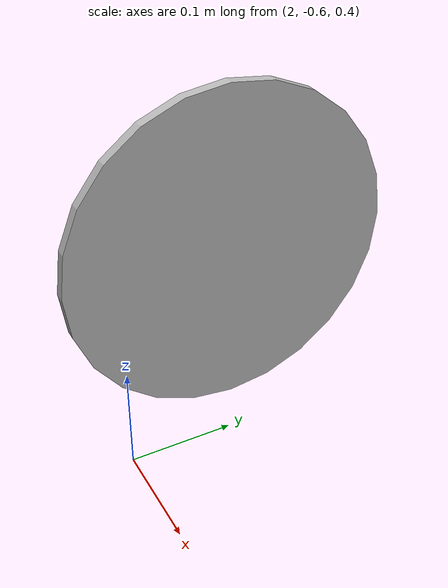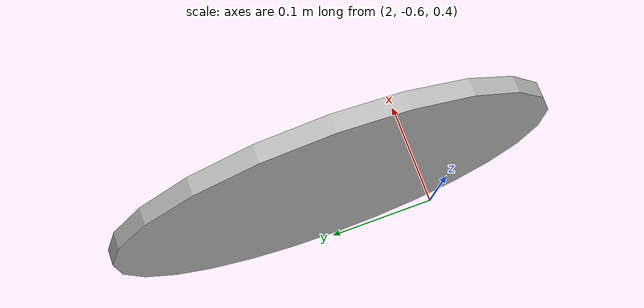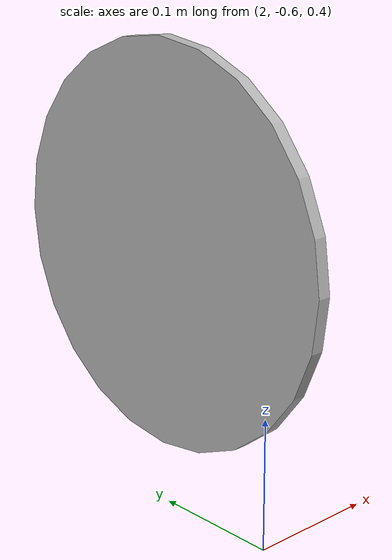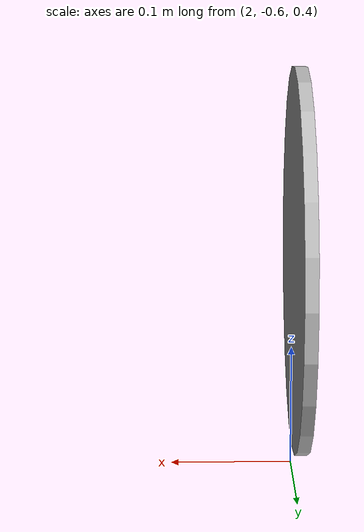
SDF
<?xml version="1.0" ?>
<sdf version="1.6">
  <model name="circular_object">
    <static>true</static>
    <pose>2 -0.5 0.6 0 1.57 0</pose>
    <link name="link">
      <collision name="collision">
        <geometry>
          <cylinder>
            <radius>0.15</radius>
            <length>0.01</length>
          </cylinder>
        </geometry>
      </collision>
      <visual name="visual">
        <geometry>
          <cylinder>
            <radius>0.15</radius>
            <length>0.01</length>
          </cylinder>
        </geometry>
        <material>
          <script>
            <uri>model://circular_object/materials/scripts</uri>
            <uri>model://circular_object/materials/textures</uri>
            <name>CircularObject</name>
          </script>
        </material>
      </visual>
    </link>
  </model>
</sdf>
